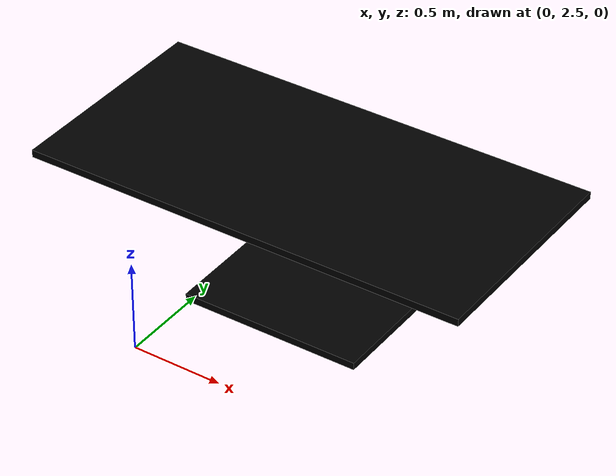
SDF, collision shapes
<?xml version='1.0'?>
<sdf version='1.7'>
  <model name='office_table'>
    <link name='link'>
      <self_collide>0</self_collide>
      <enable_wind>0</enable_wind>
      <kinematic>0</kinematic>
      <pose>0.479961 3.29961 0 0 -0 0</pose>
      <gravity>1</gravity>
      <inertial>
        <mass>1</mass>
        <pose>0 0 0 0 -0 0</pose>
        <inertia>
          <ixx>1</ixx>
          <ixy>0</ixy>
          <ixz>0</ixz>
          <iyy>1</iyy>
          <iyz>0</iyz>
          <izz>1</izz>
        </inertia>
      </inertial>
      <visual name='visual'>
        <geometry>
          <mesh>
            <uri>model://cafe_table/meshes/cafe_table.dae</uri>
            <scale>2.44 1.21 0.77</scale>
          </mesh>
        </geometry>
        <material>
          <shader type='pixel'>
            <normal_map>__default__</normal_map>
          </shader>
          <script>
            <name>ModelPreview_1::link::visual_MATERIAL_</name>
          </script>
          <ambient>0 0 0 1</ambient>
          <diffuse>0 0 0 1</diffuse>
          <specular>0 0 0 1</specular>
          <emissive>0 0 0 1</emissive>
        </material>
        <pose>0 0 0 0 -0 0</pose>
        <transparency>0</transparency>
        <cast_shadows>1</cast_shadows>
      </visual>
      <collision name='surface'>
        <laser_retro>0</laser_retro>
        <max_contacts>10</max_contacts>
        <pose>0 0 0.755 0 -0 0</pose>
        <geometry>
          <box>
            <size>2.44 1.21 0.04</size>
          </box>
        </geometry>
        <surface>
          <friction>
            <ode>
              <mu>1</mu>
              <mu2>1</mu2>
              <fdir1>0 0 0</fdir1>
              <slip1>0</slip1>
              <slip2>0</slip2>
            </ode>
            <torsional>
              <coefficient>1</coefficient>
              <patch_radius>0</patch_radius>
              <surface_radius>0</surface_radius>
              <use_patch_radius>1</use_patch_radius>
              <ode>
                <slip>0</slip>
              </ode>
            </torsional>
          </friction>
          <bounce>
            <restitution_coefficient>0</restitution_coefficient>
            <threshold>1e+06</threshold>
          </bounce>
          <contact>
            <collide_without_contact>0</collide_without_contact>
            <collide_without_contact_bitmask>1</collide_without_contact_bitmask>
            <collide_bitmask>1</collide_bitmask>
            <ode>
              <soft_cfm>0</soft_cfm>
              <soft_erp>0.2</soft_erp>
              <kp>1e+13</kp>
              <kd>1</kd>
              <max_vel>0.01</max_vel>
              <min_depth>0</min_depth>
            </ode>
            <bullet>
              <split_impulse>1</split_impulse>
              <split_impulse_penetration_threshold>-0.01</split_impulse_penetration_threshold>
              <soft_cfm>0</soft_cfm>
              <soft_erp>0.2</soft_erp>
              <kp>1e+13</kp>
              <kd>1</kd>
            </bullet>
          </contact>
        </surface>
      </collision>
      <collision name='column'>
        <laser_retro>0</laser_retro>
        <max_contacts>10</max_contacts>
        <pose>0 0 0.37 0 -0 0</pose>
        <geometry>
          <box>
            <size>0 0 0</size>
          </box>
        </geometry>
        <surface>
          <friction>
            <ode>
              <mu>1</mu>
              <mu2>1</mu2>
              <fdir1>0 0 0</fdir1>
              <slip1>0</slip1>
              <slip2>0</slip2>
            </ode>
            <torsional>
              <coefficient>1</coefficient>
              <patch_radius>0</patch_radius>
              <surface_radius>0</surface_radius>
              <use_patch_radius>1</use_patch_radius>
              <ode>
                <slip>0</slip>
              </ode>
            </torsional>
          </friction>
          <bounce>
            <restitution_coefficient>0</restitution_coefficient>
            <threshold>1e+06</threshold>
          </bounce>
          <contact>
            <collide_without_contact>0</collide_without_contact>
            <collide_without_contact_bitmask>1</collide_without_contact_bitmask>
            <collide_bitmask>1</collide_bitmask>
            <ode>
              <soft_cfm>0</soft_cfm>
              <soft_erp>0.2</soft_erp>
              <kp>1e+13</kp>
              <kd>1</kd>
              <max_vel>0.01</max_vel>
              <min_depth>0</min_depth>
            </ode>
            <bullet>
              <split_impulse>1</split_impulse>
              <split_impulse_penetration_threshold>-0.01</split_impulse_penetration_threshold>
              <soft_cfm>0</soft_cfm>
              <soft_erp>0.2</soft_erp>
              <kp>1e+13</kp>
              <kd>1</kd>
            </bullet>
          </contact>
        </surface>
      </collision>
      <collision name='base'>
        <laser_retro>0</laser_retro>
        <max_contacts>10</max_contacts>
        <pose>0 0 0.02 0 -0 0</pose>
        <geometry>
          <box>
            <size>1 0.7 0.04</size>
          </box>
        </geometry>
        <surface>
          <friction>
            <ode>
              <mu>1</mu>
              <mu2>1</mu2>
              <fdir1>0 0 0</fdir1>
              <slip1>0</slip1>
              <slip2>0</slip2>
            </ode>
            <torsional>
              <coefficient>1</coefficient>
              <patch_radius>0</patch_radius>
              <surface_radius>0</surface_radius>
              <use_patch_radius>1</use_patch_radius>
              <ode>
                <slip>0</slip>
              </ode>
            </torsional>
          </friction>
          <bounce>
            <restitution_coefficient>0</restitution_coefficient>
            <threshold>1e+06</threshold>
          </bounce>
          <contact>
            <collide_without_contact>0</collide_without_contact>
            <collide_without_contact_bitmask>1</collide_without_contact_bitmask>
            <collide_bitmask>1</collide_bitmask>
            <ode>
              <soft_cfm>0</soft_cfm>
              <soft_erp>0.2</soft_erp>
              <kp>1e+13</kp>
              <kd>1</kd>
              <max_vel>0.01</max_vel>
              <min_depth>0</min_depth>
            </ode>
            <bullet>
              <split_impulse>1</split_impulse>
              <split_impulse_penetration_threshold>-0.01</split_impulse_penetration_threshold>
              <soft_cfm>0</soft_cfm>
              <soft_erp>0.2</soft_erp>
              <kp>1e+13</kp>
              <kd>1</kd>
            </bullet>
          </contact>
        </surface>
      </collision>
    </link>
    <static>1</static>
    <allow_auto_disable>1</allow_auto_disable>
  </model>
</sdf>
